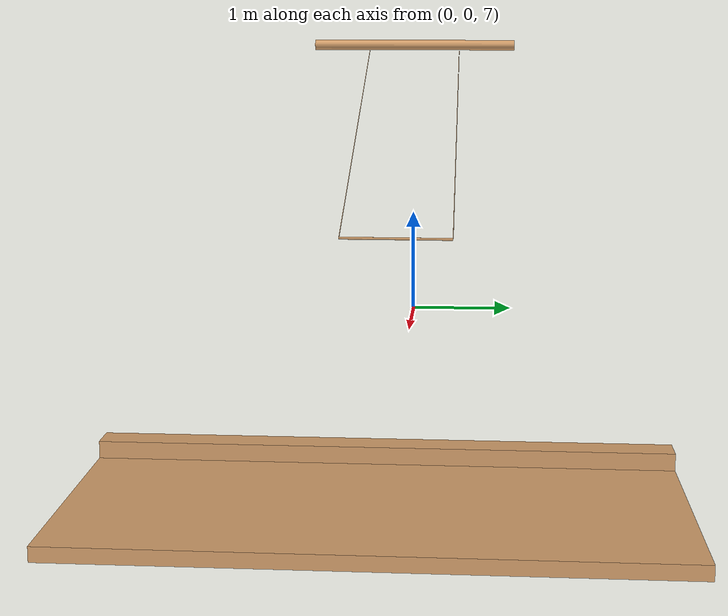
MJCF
<mujoco model='rig'>
    <compiler inertiafromgeom='true' angle='degree'/>

    <default>
        <joint limited='true' damping='0' armature='0' />
        <geom contype='1' conaffinity='1' condim='1' rgba='0.8 0.6 .4 1'
        	margin="0.001" solref=".02 1" solimp=".8 .8 .01" material="geom"/>
        <motor ctrlrange='-.4 .4' ctrllimited='true'/>
    </default>

    <option timestep='0.002' iterations="50" solver="PGS">
        <flag energy="enable"/>
    </option>

    <visual>
        <map fogstart="3" fogend="5" force="0.1"/>
        <quality shadowsize="2048"/>
    </visual>

    <asset>
        <texture type="skybox" builtin="gradient" width="100" height="100" rgb1=".4 .6 .8"
            rgb2="0 0 0"/>
        <texture name="texgeom" type="cube" builtin="flat" mark="cross" width="127" height="1278"
            rgb1="0.8 0.6 0.4" rgb2="0.8 0.6 0.4" markrgb="1 1 1" random="0.01"/>
        <texture name="texplane" type="2d" builtin="checker" rgb1=".2 .3 .4" rgb2=".1 0.15 0.2"
            width="100" height="100"/>

        <material name='MatPlane' reflectance='0.5' texture="texplane" texrepeat="1 1" texuniform="true"/>
        <material name='geom' texture="texgeom" texuniform="true"/>
    </asset>

    <worldbody>
        <geom name='floor' pos='0 0 0' size='10 10 0.125' type='plane' material="MatPlane" condim='3'/>

        <!-- 32' high, x=0  -->
        <body name='fly_crane' pos='0 0 9.7' >
            <geom name='fly_crane' type='cylinder' fromto='0 -1 0 0 1 0' size='0.05' />
	    <inertial mass='0.0' />
        </body>

        <!-- 23' high, approx. 13' = 3.94 m right of fly crane -->
        <!-- seems too close to fly bar, move a bit further -->
        <body name='board' pos='4.45 0 6.97' size='1.0 2.0 0.05' type='plane' material='MatPlane' condim='3'  >
            <geom name='board' type='box' pos='1.0 0 -0.05' size='1.0 2.0 0.05'  />
            <geom name='ridge' type='box' pos='0.3 0 0.04' size='0.1 2.0 0.08'  />
	    <inertial mass='0.0' />
        </body>

        <!-- fly cable length 12' = 3.64 m -->
        <!-- height = 8.3 m set by reasonable offset from board height -->
        <body name='fly_bar' pos='3.36 0 8.3' >
            <geom name='fly_bar' type='cylinder' fromto='0 -0.45 0 0 0.45 0' size='0.01' />
            <body name='l_fly_cable' pos='0 -0.45 0'>
                inertial mass='1' />
                <geom name='l_fly_cable' type='cylinder' fromto='-0.02 0 0   -3.36 0 1.34' size='0.0025' />
                <joint name='l_fly_cable_bar_x' type='hinge' pos='0 0 0' axis='1 0 0' range='-180 180'   damping='0' stiffness='.0' armature='0.01' />
                <joint name='l_fly_cable_bar_y' type='hinge' pos='0 0 0' axis='0 1 0' range='-180 180'   damping='0' stiffness='.0' armature='0.01' />
                <joint name='l_fly_cable_bar_z' type='hinge' pos='0 0 0' axis='0 0 1' range='-180 180'   damping='0' stiffness='.0' armature='0.01' />
            </body>
            <body name='r_fly_cable' pos='0 0.45 0'>
                inertial mass='1' />
                <geom name='r_fly_cable' type='cylinder' fromto='-0.02 0 0   -3.36 0 1.34' size='0.0025' />
                <joint name='r_fly_cable_bar_x' type='hinge' pos='0 0 0' axis='1 0 0' range='-180 180'   damping='0' stiffness='.0' armature='0.01' />
                <joint name='r_fly_cable_bar_y' type='hinge' pos='0 0 0' axis='0 1 0' range='-180 180'   damping='0' stiffness='.0' armature='0.01' />
                <joint name='r_fly_cable_bar_z' type='hinge' pos='0 0 0' axis='0 0 1' range='-180 180'   damping='0' stiffness='.0' armature='0.01' />
            </body>
        </body>

    </worldbody>

    <actuator>
        <motor name='l_fly_cable_bar_attach' gear='100' joint='l_fly_cable_bar_attach' />
        <motor name='r_fly_cable_bar_attach' gear='100' joint='r_fly_cable_bar_attach' />
    </actuator>

</mujoco>
